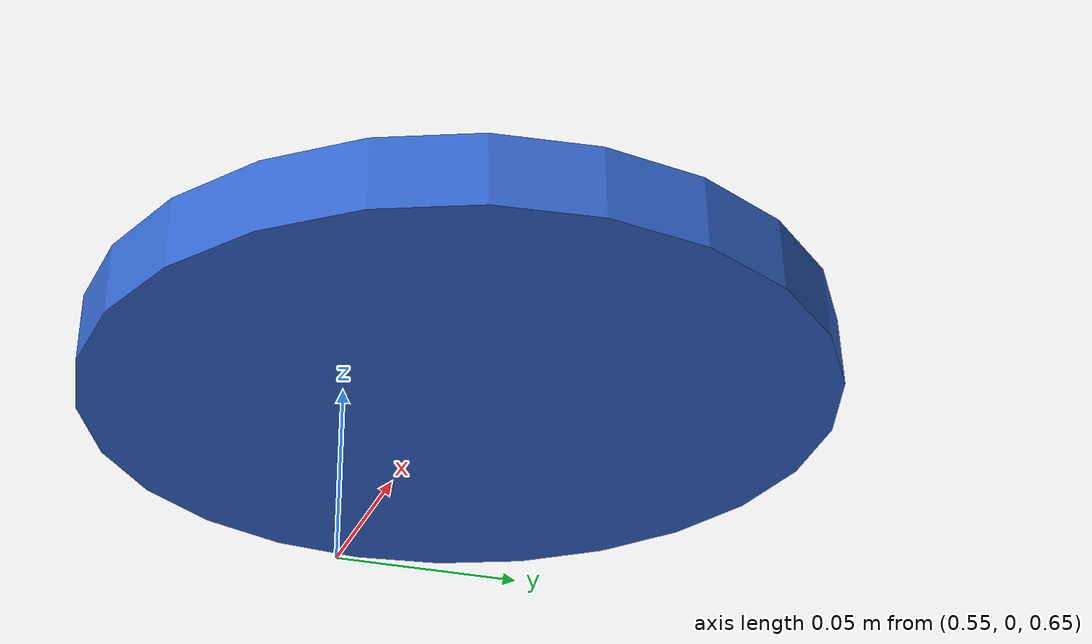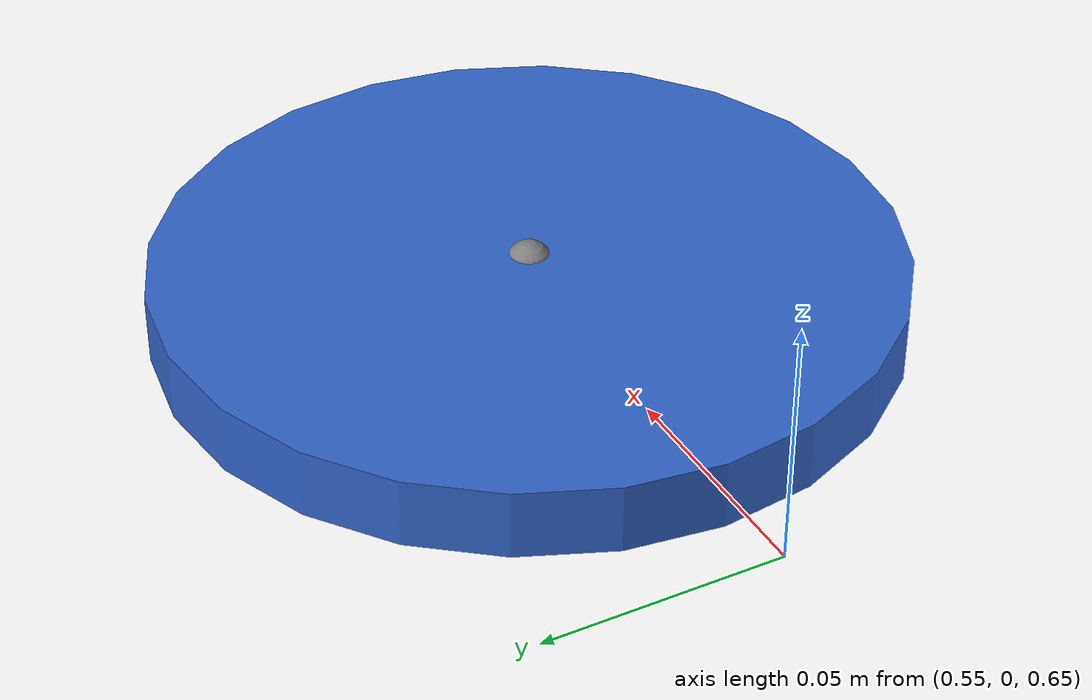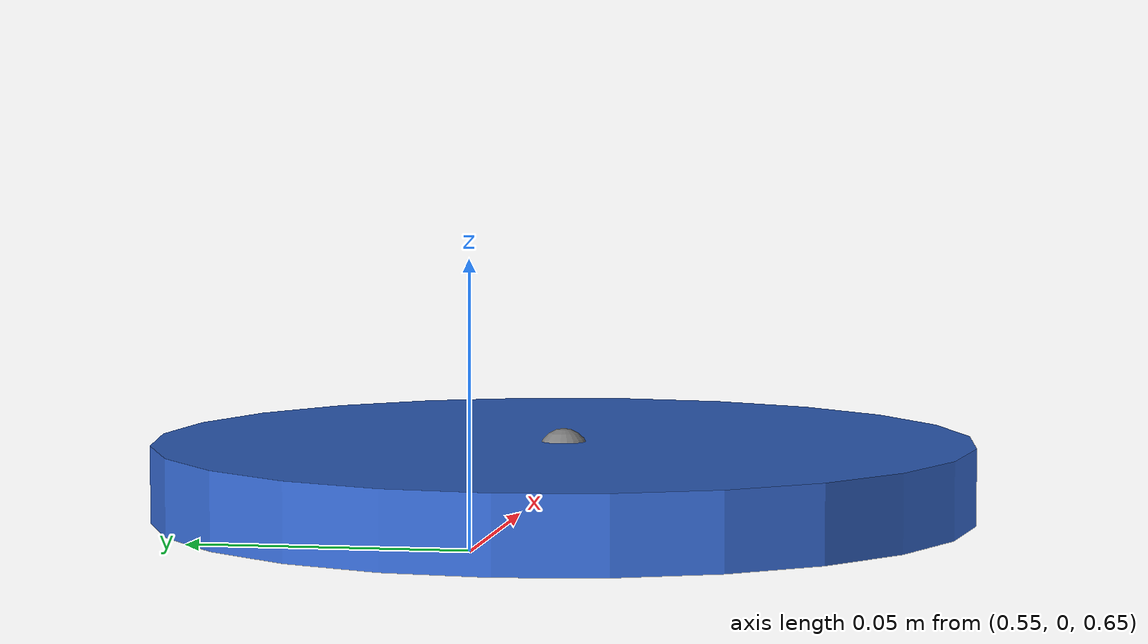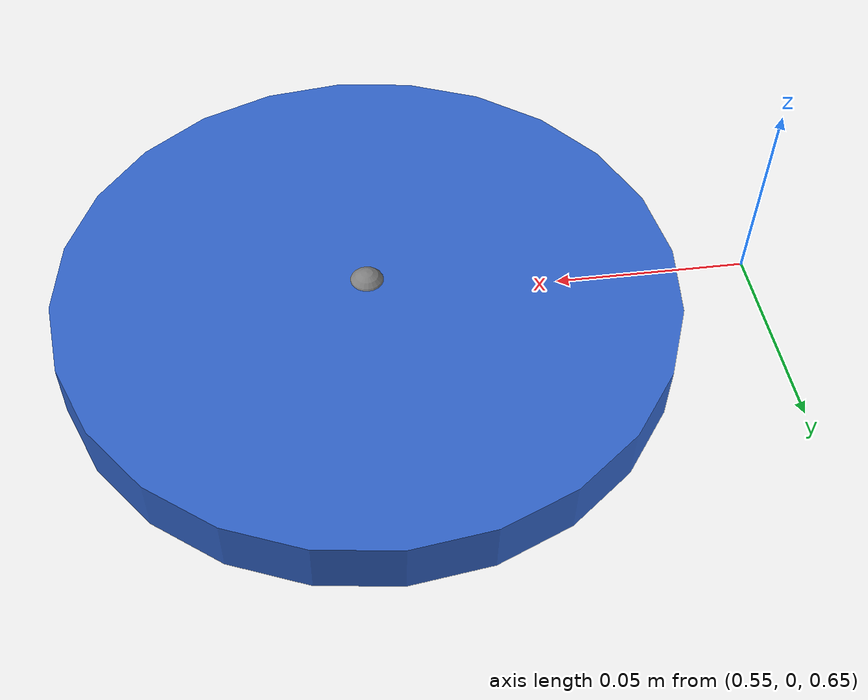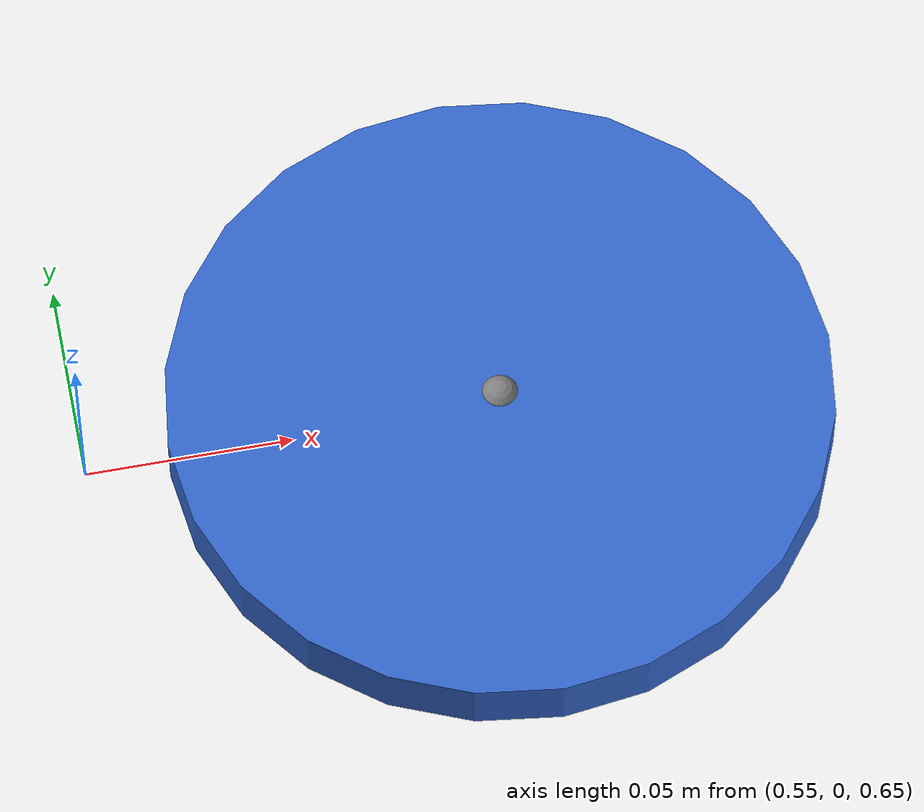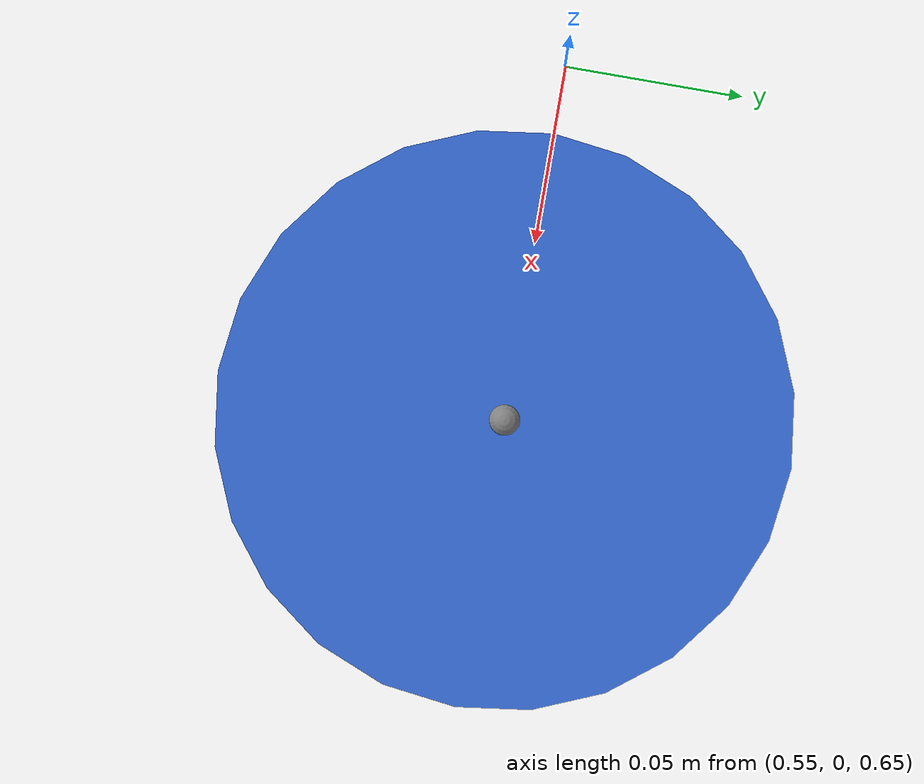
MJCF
<!-- 盘子 -->
<mujoco model="plate">
  <worldbody>
    <body name="plate" pos="0.65 0 0.65">
      <freejoint name="plate_joint"/>
      <inertial mass="0.05" diaginertia="5.3e-5 5.3e-5 1.6e-5" pos="0 0 0"/>
      <geom name="plate_geom" type="cylinder" size="0.08 0.0075" rgba="0.2 0.4 0.8 1" friction="0.8 0.6 0.3" solref="0.001 0"/>
      <site name="plate_center" pos="0 0 0.005" size="0.005"/>
    </body>
  </worldbody>
</mujoco>
